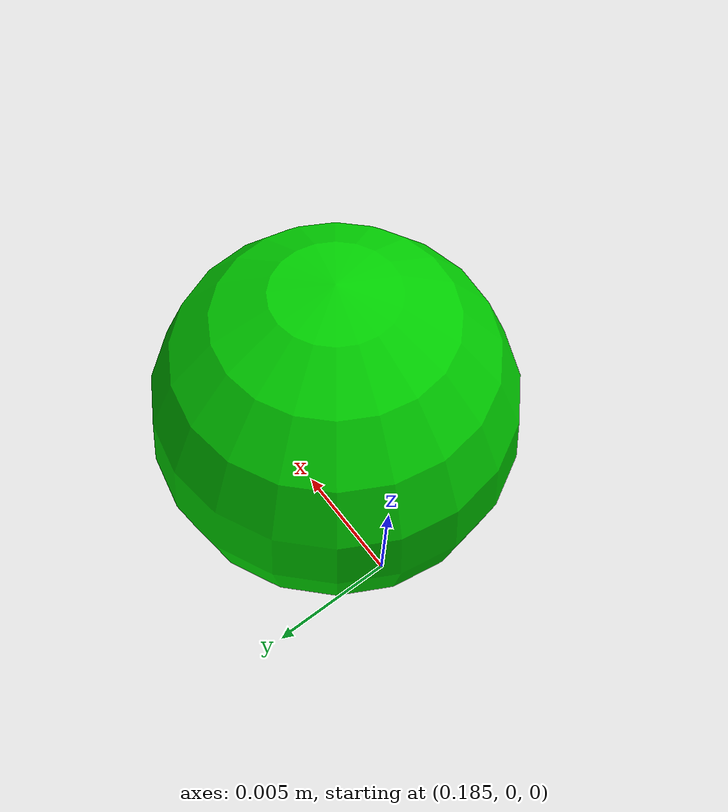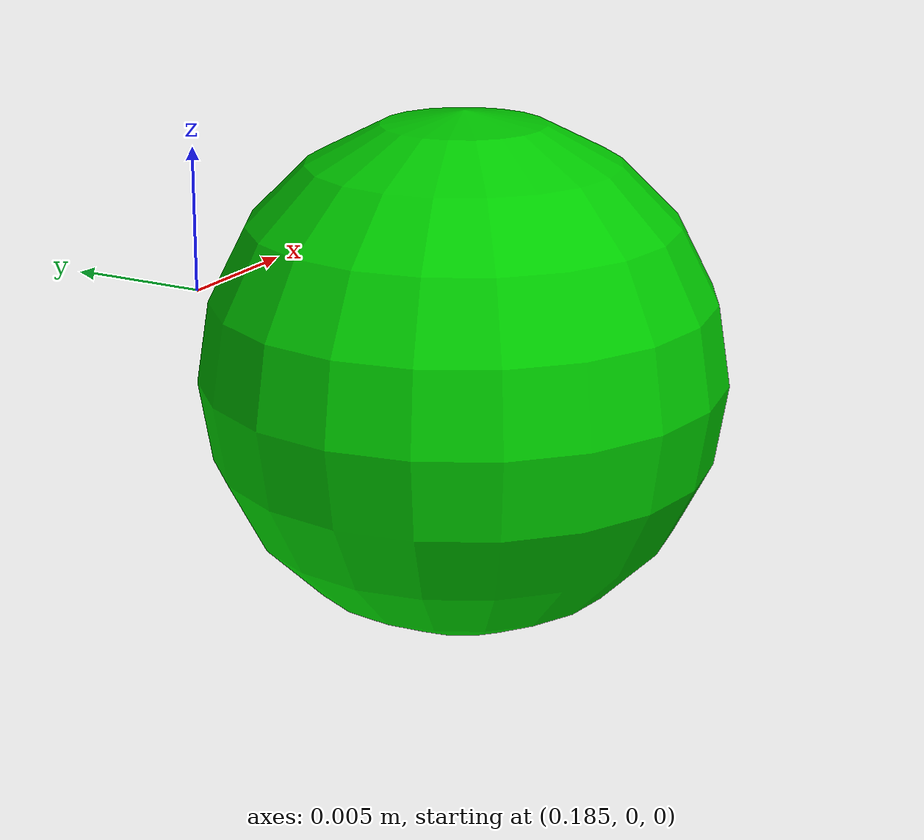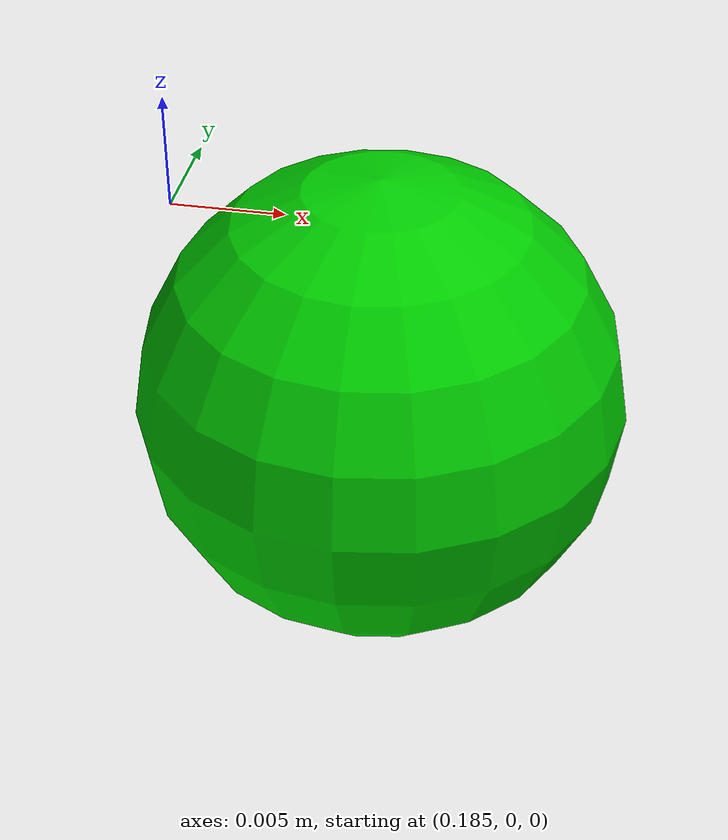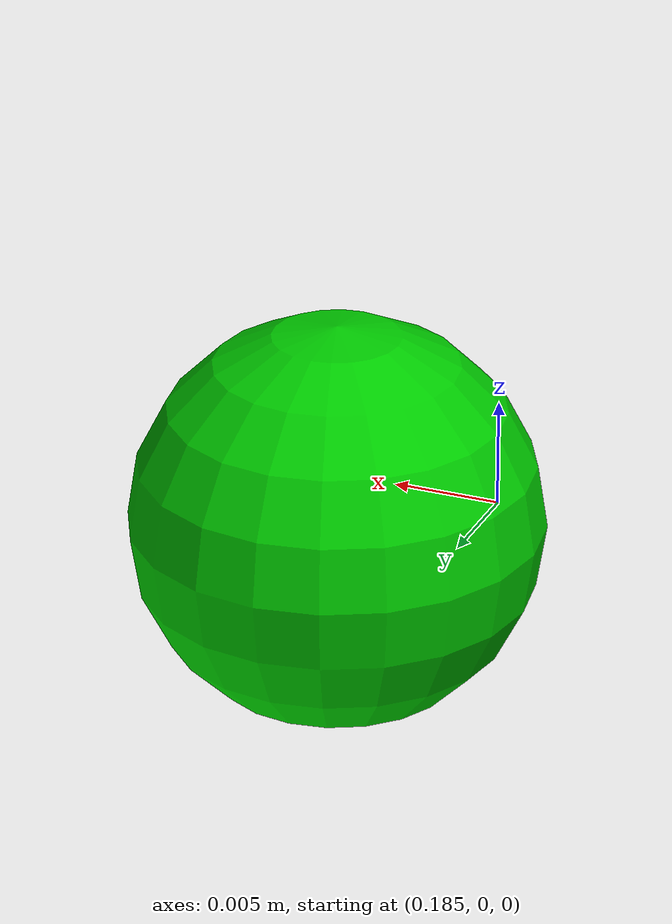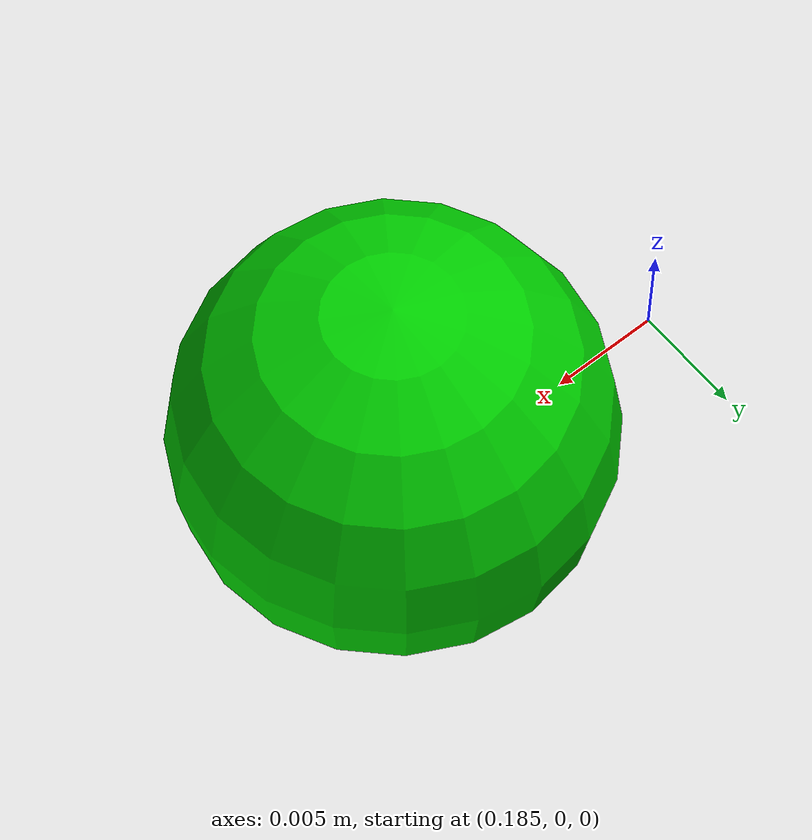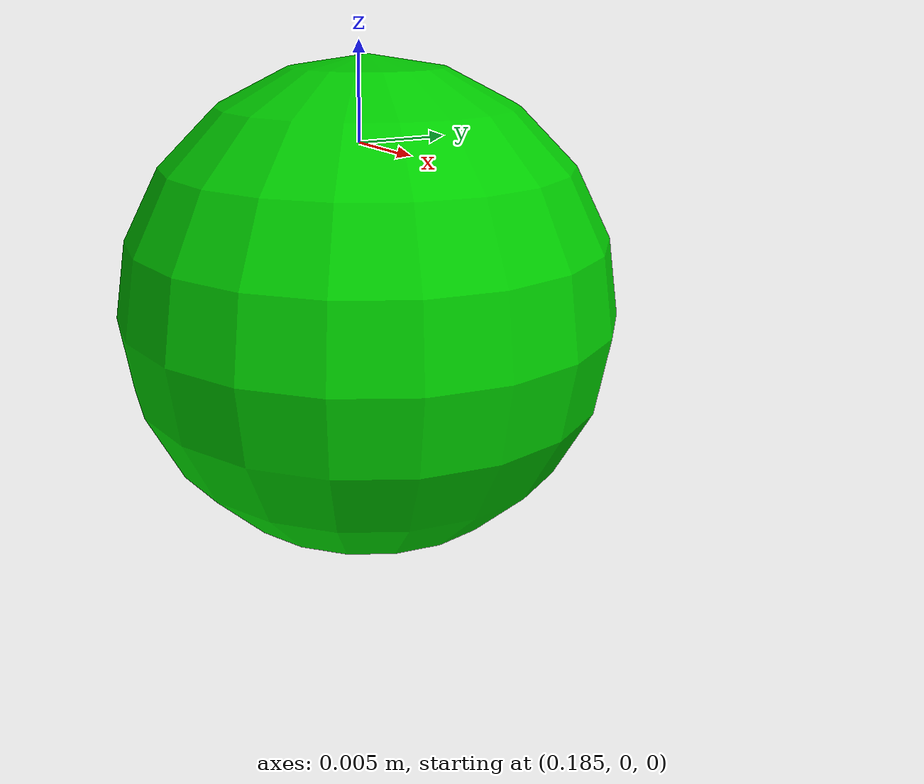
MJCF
<mujoco model="payload_scene">

  <worldbody>

    <body name="payload" pos="0.2 0 0">
      <freejoint/>
      <geom type="sphere" mass="0.003" size=".01" rgba="0 0.8 0 1" pos="-0.005 -0.005 -0.005" />
    </body>

  </worldbody>

  <equality>
    <weld body1="payload" body2="rope_r2_B19_0" solref="0.001" />
  </equality>
</mujoco>
